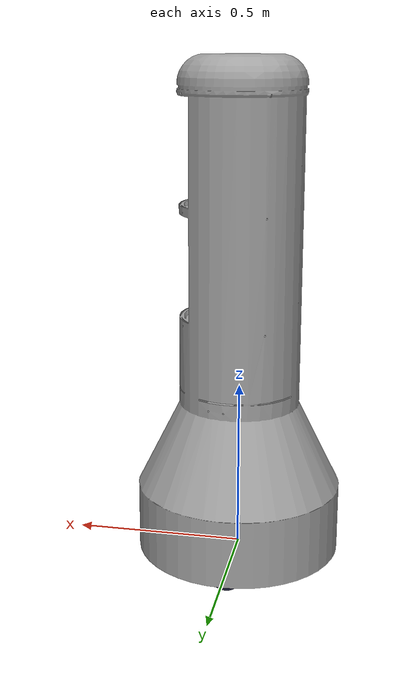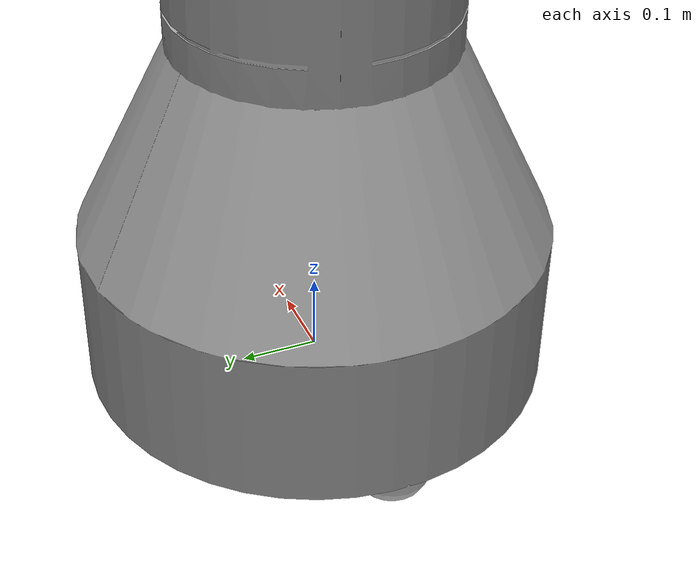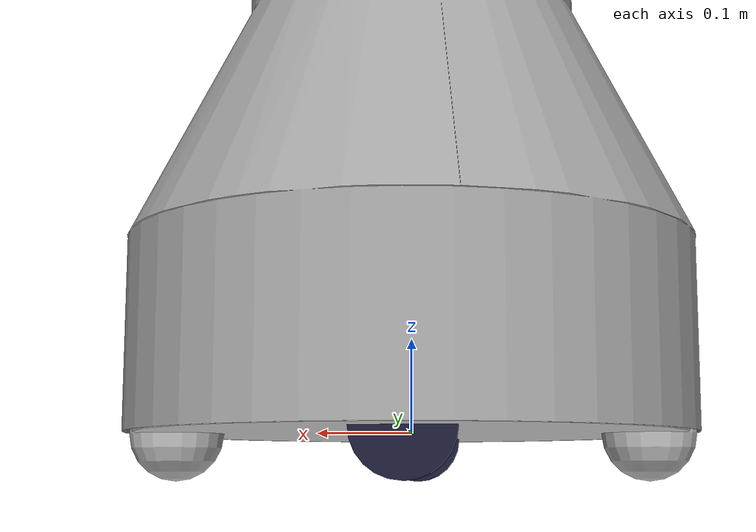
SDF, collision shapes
<?xml version="1.0" encoding="UTF-8"?>
<sdf version="1.4">
   <model name="testRobot">
      <static>false</static>
      <self_collide>false</self_collide>
      <!--  links -->
      <link name="chassis">
         <pose>0 0 0.05 0 0 0</pose>
         <inertial>
            <mass>10</mass>
         </inertial>
         <collision name="collision">
            <geometry>
               <cylinder>
                  <radius>.29</radius>
                  <length>.1</length>
               </cylinder>
            </geometry>
         </collision>
         <visual name="visual">
            <pose>0 0 0 0 0 0</pose>
            <geometry>
               <cylinder>
                  <radius>.29</radius>
                  <length>.1</length>
               </cylinder>
            </geometry>
         </visual>
         <collision name="caster_collision_front">
            <pose>-0.25 0 -0.05 0 0 0</pose>
            <geometry>
               <sphere>
                  <radius>.05</radius>
               </sphere>
            </geometry>
            <surface>
               <friction>
                  <ode>
                     <mu>0</mu>
                     <mu2>0</mu2>
                     <slip1>1.0</slip1>
                     <slip2>1.0</slip2>
                  </ode>
               </friction>
            </surface>
         </collision>
         <collision name="caster_collision_back">
            <pose>0.25 0 -0.05 0 0 0</pose>
            <geometry>
               <sphere>
                  <radius>.05</radius>
               </sphere>
            </geometry>
            <surface>
               <friction>
                  <ode>
                     <mu>0</mu>
                     <mu2>0</mu2>
                     <slip1>1.0</slip1>
                     <slip2>1.0</slip2>
                  </ode>
               </friction>
            </surface>
         </collision>
         <visual name="caster_front">
            <pose>-0.25 0 -0.05 0 0 0</pose>
            <geometry>
               <sphere>
                  <radius>.05</radius>
               </sphere>
            </geometry>
         </visual>
         <visual name="caster_back">
            <pose>0.25 0 -0.05 0 0 0</pose>
            <geometry>
               <sphere>
                  <radius>.05</radius>
               </sphere>
            </geometry>
         </visual>
      </link>
      <link name="left_wheel">
         <pose>0 0.20 0.00 0 1.5707 1.5707</pose>
         <inertial>
            <mass>1</mass>
         </inertial>
         <collision name="collision">
            <geometry>
               <cylinder>
                  <radius>.05</radius>
                  <length>.05</length>
               </cylinder>
            </geometry>
         </collision>
         <visual name="visual">
            <geometry>
               <cylinder>
                  <radius>.05</radius>
                  <length>.05</length>
               </cylinder>
            </geometry>
            <material>
               <!-- Wheel material -->
               <ambient>0.1 0.1 0.1 1</ambient>
               <diffuse>0.1 0.1 0.2 1</diffuse>
               <specular>0 0 0 0</specular>
               <emissive>0 0 0 1</emissive>
            </material>
            <!-- End wheel material -->
         </visual>
      </link>
      <link name="right_wheel">
         <pose>0 -0.20 0.00 0 1.5707 1.5707</pose>
         <inertial>
            <mass>1</mass>
         </inertial>
         <collision name="collision">
            <geometry>
               <cylinder>
                  <radius>.05</radius>
                  <length>.05</length>
               </cylinder>
            </geometry>
         </collision>
         <visual name="visual">
            <geometry>
               <cylinder>
                  <radius>.05</radius>
                  <length>.05</length>
               </cylinder>
            </geometry>
            <material>
               <!-- Wheel material -->
               <ambient>0.1 0.1 0.1 1</ambient>
               <diffuse>0.1 0.1 0.2 1</diffuse>
               <specular>0 0 0 0</specular>
               <emissive>0 0 0 1</emissive>
            </material>
            <!-- End wheel material -->
         </visual>
      </link>
      <link name="body">
         <pose>0 0 0 0 0 0 0</pose>
         <inertial>
            <mass>0.0001</mass>
         </inertial>
         <collision name="collision">
            <geometry>
               <mesh>
                  <uri>model://bierBot/meshes/robot.dae</uri>
               </mesh>
            </geometry>
         </collision>
         <visual name="visual">
            <geometry>
               <mesh>
                  <uri>model://bierBot/meshes/robot.dae</uri>
               </mesh>
            </geometry>
         </visual>
      </link>
      <link name="hokuyo_link">
         <pose>0 0 0.485 0 0 0</pose>
         <inertial>
            <mass>0.0001</mass>
         </inertial>
         <visual name="visual">
            <geometry>
               <mesh>
                  <uri>model://hokuyo/meshes/hokuyo.dae</uri>
               </mesh>
            </geometry>
         </visual>
         <collision name="collision-base">
            <pose>0 0 -0.0145 0 0 0</pose>
            <geometry>
               <box>
                  <size>0.05 0.05 0.041</size>
               </box>
            </geometry>
         </collision>
         <collision name="collision-top">
            <pose>0 0 0.0205 0 0 0</pose>
            <geometry>
               <cylinder>
                  <radius>0.021</radius>
                  <length>0.029</length>
               </cylinder>
            </geometry>
         </collision>
         <sensor name="head_hokuyo_sensor" type="ray">
            <pose>0.01 0 0.0175 0 -0 0</pose>
            <ray>
               <scan>
                  <horizontal>
                     <samples>720</samples>
                     <resolution>0.5</resolution>
                     <min_angle>-3.14159</min_angle>
                     <max_angle>3.14159</max_angle>
                  </horizontal>
               </scan>
               <range>
                  <min>0.12</min>
                  <max>11</max>
                  <resolution>0.01</resolution>
               </range>
            </ray>
            <always_on>1</always_on>
            <update_rate>30</update_rate>
            <visualize>true</visualize>
            <plugin name="gazebo_ros_head_hokuyo_controller" filename="libgazebo_ros_laser.so">
               <topicName>/scan</topicName>
               <frameName>odom</frameName>
            </plugin>
         </sensor>
      </link>
      <!-- joints -->
      <joint type="revolute" name="left_wheel_hinge">
         <pose>0 0 -0.03 0 0 0</pose>
         <child>left_wheel</child>
         <parent>chassis</parent>
         <axis>
            <xyz>0 1 0</xyz>
         </axis>
      </joint>
      <joint type="revolute" name="right_wheel_hinge">
         <pose>0 0 0.03 0 0 0</pose>
         <child>right_wheel</child>
         <parent>chassis</parent>
         <axis>
            <xyz>0 1 0</xyz>
         </axis>
      </joint>
      <joint name="hokuyo_joint" type="fixed">
         <pose>0 0 0 0 0 0</pose>
         <child>hokuyo_link</child>
         <parent>chassis</parent>
         <axis>
            <xyz>0 1 0</xyz>
         </axis>
      </joint>
      <joint name="body_joint" type="fixed">
         <pose>0 0 0 0 0 0</pose>
         <child>body</child>
         <parent>chassis</parent>
         <axis>
            <xyz>0 1 0</xyz>
         </axis>
      </joint>
      <plugin name="differential_drive_controller" filename="libgazebo_ros_diff_drive.so">
         <alwaysOn>true</alwaysOn>
         <updateRate>20</updateRate>
         <leftJoint>left_wheel_hinge</leftJoint>
         <rightJoint>right_wheel_hinge</rightJoint>
         <wheelSeparation>0.45</wheelSeparation>
         <wheelDiameter>0.1</wheelDiameter>
         <torque>0.5</torque>
         <commandTopic>cmd_vel</commandTopic>
         <odometryTopic>odom</odometryTopic>
         <odometryFrame>odom</odometryFrame>
         <robotBaseFrame>chassis</robotBaseFrame>
      </plugin>
   </model>
</sdf>
